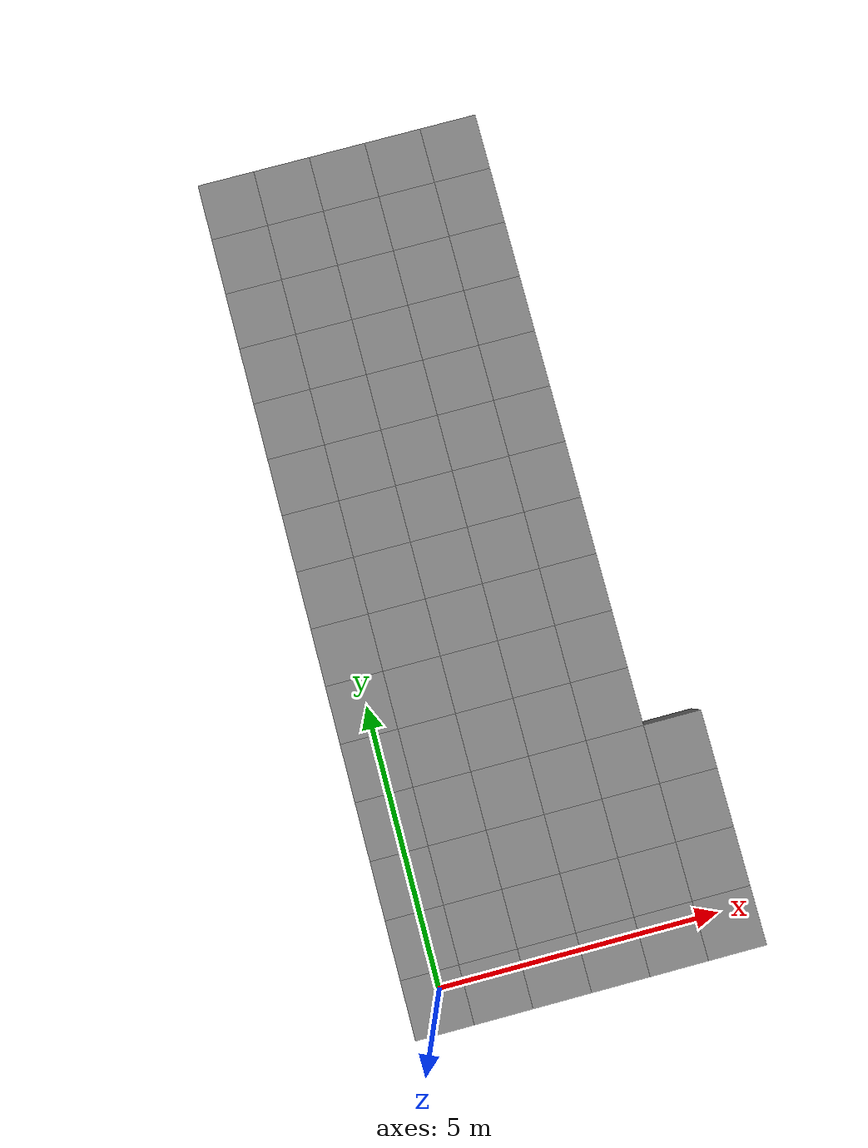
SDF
<sdf version="1.6">
 <world name="default">
  <model name="block_|0-0|">
   <static>true</static>
   <link name="link">
    <pose>0 0 0.5 0 0 0</pose>
    <collision name="collision"><geometry><box><size>1 1 1</size></box></geometry></collision>
    <visual name="visual">
     <geometry><box><size>1 1 1</size></box></geometry>
     <material><ambient>0.5 0.5 0.5 1</ambient></material>
    </visual>
   </link>
  </model>
  <model name="block_|0-1|">
   <static>true</static>
   <link name="link">
    <pose>0 1 0.5 0 0 0</pose>
    <collision name="collision"><geometry><box><size>1 1 1</size></box></geometry></collision>
    <visual name="visual">
     <geometry><box><size>1 1 1</size></box></geometry>
     <material><ambient>0.5 0.5 0.5 1</ambient></material>
    </visual>
   </link>
  </model>
  <model name="block_|0-2|">
   <static>true</static>
   <link name="link">
    <pose>0 2 0.5 0 0 0</pose>
    <collision name="collision"><geometry><box><size>1 1 1</size></box></geometry></collision>
    <visual name="visual">
     <geometry><box><size>1 1 1</size></box></geometry>
     <material><ambient>0.5 0.5 0.5 1</ambient></material>
    </visual>
   </link>
  </model>
  <model name="block_|0-3|">
   <static>true</static>
   <link name="link">
    <pose>0 3 0.5 0 0 0</pose>
    <collision name="collision"><geometry><box><size>1 1 1</size></box></geometry></collision>
    <visual name="visual">
     <geometry><box><size>1 1 1</size></box></geometry>
     <material><ambient>0.5 0.5 0.5 1</ambient></material>
    </visual>
   </link>
  </model>
  <model name="block_|0-4|">
   <static>true</static>
   <link name="link">
    <pose>0 4 0.5 0 0 0</pose>
    <collision name="collision"><geometry><box><size>1 1 1</size></box></geometry></collision>
    <visual name="visual">
     <geometry><box><size>1 1 1</size></box></geometry>
     <material><ambient>0.5 0.5 0.5 1</ambient></material>
    </visual>
   </link>
  </model>
  <model name="block_|0-5|">
   <static>true</static>
   <link name="link">
    <pose>0 5 0.5 0 0 0</pose>
    <collision name="collision"><geometry><box><size>1 1 1</size></box></geometry></collision>
    <visual name="visual">
     <geometry><box><size>1 1 1</size></box></geometry>
     <material><ambient>0.5 0.5 0.5 1</ambient></material>
    </visual>
   </link>
  </model>
  <model name="block_|0-6|">
   <static>true</static>
   <link name="link">
    <pose>0 6 0.5 0 0 0</pose>
    <collision name="collision"><geometry><box><size>1 1 1</size></box></geometry></collision>
    <visual name="visual">
     <geometry><box><size>1 1 1</size></box></geometry>
     <material><ambient>0.5 0.5 0.5 1</ambient></material>
    </visual>
   </link>
  </model>
  <model name="block_|0-7|">
   <static>true</static>
   <link name="link">
    <pose>0 7 0.5 0 0 0</pose>
    <collision name="collision"><geometry><box><size>1 1 1</size></box></geometry></collision>
    <visual name="visual">
     <geometry><box><size>1 1 1</size></box></geometry>
     <material><ambient>0.5 0.5 0.5 1</ambient></material>
    </visual>
   </link>
  </model>
  <model name="block_|0-8|">
   <static>true</static>
   <link name="link">
    <pose>0 8 0.5 0 0 0</pose>
    <collision name="collision"><geometry><box><size>1 1 1</size></box></geometry></collision>
    <visual name="visual">
     <geometry><box><size>1 1 1</size></box></geometry>
     <material><ambient>0.5 0.5 0.5 1</ambient></material>
    </visual>
   </link>
  </model>
  <model name="block_|0-9|">
   <static>true</static>
   <link name="link">
    <pose>0 9 0.5 0 0 0</pose>
    <collision name="collision"><geometry><box><size>1 1 1</size></box></geometry></collision>
    <visual name="visual">
     <geometry><box><size>1 1 1</size></box></geometry>
     <material><ambient>0.5 0.5 0.5 1</ambient></material>
    </visual>
   </link>
  </model>
  <model name="block_|0-10|">
   <static>true</static>
   <link name="link">
    <pose>0 10 0.5 0 0 0</pose>
    <collision name="collision"><geometry><box><size>1 1 1</size></box></geometry></collision>
    <visual name="visual">
     <geometry><box><size>1 1 1</size></box></geometry>
     <material><ambient>0.5 0.5 0.5 1</ambient></material>
    </visual>
   </link>
  </model>
  <model name="block_|0-11|">
   <static>true</static>
   <link name="link">
    <pose>0 11 0.5 0 0 0</pose>
    <collision name="collision"><geometry><box><size>1 1 1</size></box></geometry></collision>
    <visual name="visual">
     <geometry><box><size>1 1 1</size></box></geometry>
     <material><ambient>0.5 0.5 0.5 1</ambient></material>
    </visual>
   </link>
  </model>
  <model name="block_|0-12|">
   <static>true</static>
   <link name="link">
    <pose>0 12 0.5 0 0 0</pose>
    <collision name="collision"><geometry><box><size>1 1 1</size></box></geometry></collision>
    <visual name="visual">
     <geometry><box><size>1 1 1</size></box></geometry>
     <material><ambient>0.5 0.5 0.5 1</ambient></material>
    </visual>
   </link>
  </model>
  <model name="block_|0-13|">
   <static>true</static>
   <link name="link">
    <pose>0 13 0.5 0 0 0</pose>
    <collision name="collision"><geometry><box><size>1 1 1</size></box></geometry></collision>
    <visual name="visual">
     <geometry><box><size>1 1 1</size></box></geometry>
     <material><ambient>0.5 0.5 0.5 1</ambient></material>
    </visual>
   </link>
  </model>
  <model name="block_|0-14|">
   <static>true</static>
   <link name="link">
    <pose>0 14 0.5 0 0 0</pose>
    <collision name="collision"><geometry><box><size>1 1 1</size></box></geometry></collision>
    <visual name="visual">
     <geometry><box><size>1 1 1</size></box></geometry>
     <material><ambient>0.5 0.5 0.5 1</ambient></material>
    </visual>
   </link>
  </model>
  <model name="block_|1-0|">
   <static>true</static>
   <link name="link">
    <pose>1 0 0.5 0 0 0</pose>
    <collision name="collision"><geometry><box><size>1 1 1</size></box></geometry></collision>
    <visual name="visual">
     <geometry><box><size>1 1 1</size></box></geometry>
     <material><ambient>0.5 0.5 0.5 1</ambient></material>
    </visual>
   </link>
  </model>
  <model name="block_|1-1|">
   <static>true</static>
   <link name="link">
    <pose>1 1 0.5 0 0 0</pose>
    <collision name="collision"><geometry><box><size>1 1 1</size></box></geometry></collision>
    <visual name="visual">
     <geometry><box><size>1 1 1</size></box></geometry>
     <material><ambient>0.5 0.5 0.5 1</ambient></material>
    </visual>
   </link>
  </model>
  <model name="block_|1-2|">
   <static>true</static>
   <link name="link">
    <pose>1 2 0.5 0 0 0</pose>
    <collision name="collision"><geometry><box><size>1 1 1</size></box></geometry></collision>
    <visual name="visual">
     <geometry><box><size>1 1 1</size></box></geometry>
     <material><ambient>0.5 0.5 0.5 1</ambient></material>
    </visual>
   </link>
  </model>
  <model name="block_|1-3|">
   <static>true</static>
   <link name="link">
    <pose>1 3 0.5 0 0 0</pose>
    <collision name="collision"><geometry><box><size>1 1 1</size></box></geometry></collision>
    <visual name="visual">
     <geometry><box><size>1 1 1</size></box></geometry>
     <material><ambient>0.5 0.5 0.5 1</ambient></material>
    </visual>
   </link>
  </model>
  <model name="block_|1-4|">
   <static>true</static>
   <link name="link">
    <pose>1 4 0.5 0 0 0</pose>
    <collision name="collision"><geometry><box><size>1 1 1</size></box></geometry></collision>
    <visual name="visual">
     <geometry><box><size>1 1 1</size></box></geometry>
     <material><ambient>0.5 0.5 0.5 1</ambient></material>
    </visual>
   </link>
  </model>
  <model name="block_|1-5|">
   <static>true</static>
   <link name="link">
    <pose>1 5 0.5 0 0 0</pose>
    <collision name="collision"><geometry><box><size>1 1 1</size></box></geometry></collision>
    <visual name="visual">
     <geometry><box><size>1 1 1</size></box></geometry>
     <material><ambient>0.5 0.5 0.5 1</ambient></material>
    </visual>
   </link>
  </model>
  <model name="block_|1-6|">
   <static>true</static>
   <link name="link">
    <pose>1 6 0.5 0 0 0</pose>
    <collision name="collision"><geometry><box><size>1 1 1</size></box></geometry></collision>
    <visual name="visual">
     <geometry><box><size>1 1 1</size></box></geometry>
     <material><ambient>0.5 0.5 0.5 1</ambient></material>
    </visual>
   </link>
  </model>
  <model name="block_|1-7|">
   <static>true</static>
   <link name="link">
    <pose>1 7 0.5 0 0 0</pose>
    <collision name="collision"><geometry><box><size>1 1 1</size></box></geometry></collision>
    <visual name="visual">
     <geometry><box><size>1 1 1</size></box></geometry>
     <material><ambient>0.5 0.5 0.5 1</ambient></material>
    </visual>
   </link>
  </model>
  <model name="block_|1-8|">
   <static>true</static>
   <link name="link">
    <pose>1 8 0.5 0 0 0</pose>
    <collision name="collision"><geometry><box><size>1 1 1</size></box></geometry></collision>
    <visual name="visual">
     <geometry><box><size>1 1 1</size></box></geometry>
     <material><ambient>0.5 0.5 0.5 1</ambient></material>
    </visual>
   </link>
  </model>
  <model name="block_|1-9|">
   <static>true</static>
   <link name="link">
    <pose>1 9 0.5 0 0 0</pose>
    <collision name="collision"><geometry><box><size>1 1 1</size></box></geometry></collision>
    <visual name="visual">
     <geometry><box><size>1 1 1</size></box></geometry>
     <material><ambient>0.5 0.5 0.5 1</ambient></material>
    </visual>
   </link>
  </model>
  <model name="block_|1-10|">
   <static>true</static>
   <link name="link">
    <pose>1 10 0.5 0 0 0</pose>
    <collision name="collision"><geometry><box><size>1 1 1</size></box></geometry></collision>
    <visual name="visual">
     <geometry><box><size>1 1 1</size></box></geometry>
     <material><ambient>0.5 0.5 0.5 1</ambient></material>
    </visual>
   </link>
  </model>
  <model name="block_|1-11|">
   <static>true</static>
   <link name="link">
    <pose>1 11 0.5 0 0 0</pose>
    <collision name="collision"><geometry><box><size>1 1 1</size></box></geometry></collision>
    <visual name="visual">
     <geometry><box><size>1 1 1</size></box></geometry>
     <material><ambient>0.5 0.5 0.5 1</ambient></material>
    </visual>
   </link>
  </model>
  <model name="block_|1-12|">
   <static>true</static>
   <link name="link">
    <pose>1 12 0.5 0 0 0</pose>
    <collision name="collision"><geometry><box><size>1 1 1</size></box></geometry></collision>
    <visual name="visual">
     <geometry><box><size>1 1 1</size></box></geometry>
     <material><ambient>0.5 0.5 0.5 1</ambient></material>
    </visual>
   </link>
  </model>
  <model name="block_|1-13|">
   <static>true</static>
   <link name="link">
    <pose>1 13 0.5 0 0 0</pose>
    <collision name="collision"><geometry><box><size>1 1 1</size></box></geometry></collision>
    <visual name="visual">
     <geometry><box><size>1 1 1</size></box></geometry>
     <material><ambient>0.5 0.5 0.5 1</ambient></material>
    </visual>
   </link>
  </model>
  <model name="block_|1-14|">
   <static>true</static>
   <link name="link">
    <pose>1 14 0.5 0 0 0</pose>
    <collision name="collision"><geometry><box><size>1 1 1</size></box></geometry></collision>
    <visual name="visual">
     <geometry><box><size>1 1 1</size></box></geometry>
     <material><ambient>0.5 0.5 0.5 1</ambient></material>
    </visual>
   </link>
  </model>
  <model name="block_|2-0|">
   <static>true</static>
   <link name="link">
    <pose>2 0 0.5 0 0 0</pose>
    <collision name="collision"><geometry><box><size>1 1 1</size></box></geometry></collision>
    <visual name="visual">
     <geometry><box><size>1 1 1</size></box></geometry>
     <material><ambient>0.5 0.5 0.5 1</ambient></material>
    </visual>
   </link>
  </model>
  <model name="block_|2-1|">
   <static>true</static>
   <link name="link">
    <pose>2 1 0.5 0 0 0</pose>
    <collision name="collision"><geometry><box><size>1 1 1</size></box></geometry></collision>
    <visual name="visual">
     <geometry><box><size>1 1 1</size></box></geometry>
     <material><ambient>0.5 0.5 0.5 1</ambient></material>
    </visual>
   </link>
  </model>
  <model name="block_|2-2|">
   <static>true</static>
   <link name="link">
    <pose>2 2 0.5 0 0 0</pose>
    <collision name="collision"><geometry><box><size>1 1 1</size></box></geometry></collision>
    <visual name="visual">
     <geometry><box><size>1 1 1</size></box></geometry>
     <material><ambient>0.5 0.5 0.5 1</ambient></material>
    </visual>
   </link>
  </model>
  <model name="block_|2-3|">
   <static>true</static>
   <link name="link">
    <pose>2 3 0.5 0 0 0</pose>
    <collision name="collision"><geometry><box><size>1 1 1</size></box></geometry></collision>
    <visual name="visual">
     <geometry><box><size>1 1 1</size></box></geometry>
     <material><ambient>0.5 0.5 0.5 1</ambient></material>
    </visual>
   </link>
  </model>
  <model name="block_|2-4|">
   <static>true</static>
   <link name="link">
    <pose>2 4 0.5 0 0 0</pose>
    <collision name="collision"><geometry><box><size>1 1 1</size></box></geometry></collision>
    <visual name="visual">
     <geometry><box><size>1 1 1</size></box></geometry>
     <material><ambient>0.5 0.5 0.5 1</ambient></material>
    </visual>
   </link>
  </model>
  <model name="block_|2-5|">
   <static>true</static>
   <link name="link">
    <pose>2 5 0.5 0 0 0</pose>
    <collision name="collision"><geometry><box><size>1 1 1</size></box></geometry></collision>
    <visual name="visual">
     <geometry><box><size>1 1 1</size></box></geometry>
     <material><ambient>0.5 0.5 0.5 1</ambient></material>
    </visual>
   </link>
  </model>
  <model name="block_|2-6|">
   <static>true</static>
   <link name="link">
    <pose>2 6 0.5 0 0 0</pose>
    <collision name="collision"><geometry><box><size>1 1 1</size></box></geometry></collision>
    <visual name="visual">
     <geometry><box><size>1 1 1</size></box></geometry>
     <material><ambient>0.5 0.5 0.5 1</ambient></material>
    </visual>
   </link>
  </model>
  <model name="block_|2-7|">
   <static>true</static>
   <link name="link">
    <pose>2 7 0.5 0 0 0</pose>
    <collision name="collision"><geometry><box><size>1 1 1</size></box></geometry></collision>
    <visual name="visual">
     <geometry><box><size>1 1 1</size></box></geometry>
     <material><ambient>0.5 0.5 0.5 1</ambient></material>
    </visual>
   </link>
  </model>
  <model name="block_|2-8|">
   <static>true</static>
   <link name="link">
    <pose>2 8 0.5 0 0 0</pose>
    <collision name="collision"><geometry><box><size>1 1 1</size></box></geometry></collision>
    <visual name="visual">
     <geometry><box><size>1 1 1</size></box></geometry>
     <material><ambient>0.5 0.5 0.5 1</ambient></material>
    </visual>
   </link>
  </model>
  <model name="block_|2-9|">
   <static>true</static>
   <link name="link">
    <pose>2 9 0.5 0 0 0</pose>
    <collision name="collision"><geometry><box><size>1 1 1</size></box></geometry></collision>
    <visual name="visual">
     <geometry><box><size>1 1 1</size></box></geometry>
     <material><ambient>0.5 0.5 0.5 1</ambient></material>
    </visual>
   </link>
  </model>
  <model name="block_|2-10|">
   <static>true</static>
   <link name="link">
    <pose>2 10 0.5 0 0 0</pose>
    <collision name="collision"><geometry><box><size>1 1 1</size></box></geometry></collision>
    <visual name="visual">
     <geometry><box><size>1 1 1</size></box></geometry>
     <material><ambient>0.5 0.5 0.5 1</ambient></material>
    </visual>
   </link>
  </model>
  <model name="block_|2-11|">
   <static>true</static>
   <link name="link">
    <pose>2 11 0.5 0 0 0</pose>
    <collision name="collision"><geometry><box><size>1 1 1</size></box></geometry></collision>
    <visual name="visual">
     <geometry><box><size>1 1 1</size></box></geometry>
     <material><ambient>0.5 0.5 0.5 1</ambient></material>
    </visual>
   </link>
  </model>
  <model name="block_|2-12|">
   <static>true</static>
   <link name="link">
    <pose>2 12 0.5 0 0 0</pose>
    <collision name="collision"><geometry><box><size>1 1 1</size></box></geometry></collision>
    <visual name="visual">
     <geometry><box><size>1 1 1</size></box></geometry>
     <material><ambient>0.5 0.5 0.5 1</ambient></material>
    </visual>
   </link>
  </model>
  <model name="block_|2-13|">
   <static>true</static>
   <link name="link">
    <pose>2 13 0.5 0 0 0</pose>
    <collision name="collision"><geometry><box><size>1 1 1</size></box></geometry></collision>
    <visual name="visual">
     <geometry><box><size>1 1 1</size></box></geometry>
     <material><ambient>0.5 0.5 0.5 1</ambient></material>
    </visual>
   </link>
  </model>
  <model name="block_|2-14|">
   <static>true</static>
   <link name="link">
    <pose>2 14 0.5 0 0 0</pose>
    <collision name="collision"><geometry><box><size>1 1 1</size></box></geometry></collision>
    <visual name="visual">
     <geometry><box><size>1 1 1</size></box></geometry>
     <material><ambient>0.5 0.5 0.5 1</ambient></material>
    </visual>
   </link>
  </model>
  <model name="block_|3-0|">
   <static>true</static>
   <link name="link">
    <pose>3 0 0.5 0 0 0</pose>
    <collision name="collision"><geometry><box><size>1 1 1</size></box></geometry></collision>
    <visual name="visual">
     <geometry><box><size>1 1 1</size></box></geometry>
     <material><ambient>0.5 0.5 0.5 1</ambient></material>
    </visual>
   </link>
  </model>
  <model name="block_|3-1|">
   <static>true</static>
   <link name="link">
    <pose>3 1 0.5 0 0 0</pose>
    <collision name="collision"><geometry><box><size>1 1 1</size></box></geometry></collision>
    <visual name="visual">
     <geometry><box><size>1 1 1</size></box></geometry>
     <material><ambient>0.5 0.5 0.5 1</ambient></material>
    </visual>
   </link>
  </model>
  <model name="block_|3-2|">
   <static>true</static>
   <link name="link">
    <pose>3 2 0.5 0 0 0</pose>
    <collision name="collision"><geometry><box><size>1 1 1</size></box></geometry></collision>
    <visual name="visual">
     <geometry><box><size>1 1 1</size></box></geometry>
     <material><ambient>0.5 0.5 0.5 1</ambient></material>
    </visual>
   </link>
  </model>
  <model name="block_|3-3|">
   <static>true</static>
   <link name="link">
    <pose>3 3 0.5 0 0 0</pose>
    <collision name="collision"><geometry><box><size>1 1 1</size></box></geometry></collision>
    <visual name="visual">
     <geometry><box><size>1 1 1</size></box></geometry>
     <material><ambient>0.5 0.5 0.5 1</ambient></material>
    </visual>
   </link>
  </model>
  <model name="block_|3-4|">
   <static>true</static>
   <link name="link">
    <pose>3 4 0.5 0 0 0</pose>
    <collision name="collision"><geometry><box><size>1 1 1</size></box></geometry></collision>
    <visual name="visual">
     <geometry><box><size>1 1 1</size></box></geometry>
     <material><ambient>0.5 0.5 0.5 1</ambient></material>
    </visual>
   </link>
  </model>
  <model name="block_|3-5|">
   <static>true</static>
   <link name="link">
    <pose>3 5 0.5 0 0 0</pose>
    <collision name="collision"><geometry><box><size>1 1 1</size></box></geometry></collision>
    <visual name="visual">
     <geometry><box><size>1 1 1</size></box></geometry>
     <material><ambient>0.5 0.5 0.5 1</ambient></material>
    </visual>
   </link>
  </model>
  <model name="block_|3-6|">
   <static>true</static>
   <link name="link">
    <pose>3 6 0.5 0 0 0</pose>
    <collision name="collision"><geometry><box><size>1 1 1</size></box></geometry></collision>
    <visual name="visual">
     <geometry><box><size>1 1 1</size></box></geometry>
     <material><ambient>0.5 0.5 0.5 1</ambient></material>
    </visual>
   </link>
  </model>
  <model name="block_|3-7|">
   <static>true</static>
   <link name="link">
    <pose>3 7 0.5 0 0 0</pose>
    <collision name="collision"><geometry><box><size>1 1 1</size></box></geometry></collision>
    <visual name="visual">
     <geometry><box><size>1 1 1</size></box></geometry>
     <material><ambient>0.5 0.5 0.5 1</ambient></material>
    </visual>
   </link>
  </model>
  <model name="block_|3-8|">
   <static>true</static>
   <link name="link">
    <pose>3 8 0.5 0 0 0</pose>
    <collision name="collision"><geometry><box><size>1 1 1</size></box></geometry></collision>
    <visual name="visual">
     <geometry><box><size>1 1 1</size></box></geometry>
     <material><ambient>0.5 0.5 0.5 1</ambient></material>
    </visual>
   </link>
  </model>
  <model name="block_|3-9|">
   <static>true</static>
   <link name="link">
    <pose>3 9 0.5 0 0 0</pose>
    <collision name="collision"><geometry><box><size>1 1 1</size></box></geometry></collision>
    <visual name="visual">
     <geometry><box><size>1 1 1</size></box></geometry>
     <material><ambient>0.5 0.5 0.5 1</ambient></material>
    </visual>
   </link>
  </model>
  <model name="block_|3-10|">
   <static>true</static>
   <link name="link">
    <pose>3 10 0.5 0 0 0</pose>
    <collision name="collision"><geometry><box><size>1 1 1</size></box></geometry></collision>
    <visual name="visual">
     <geometry><box><size>1 1 1</size></box></geometry>
     <material><ambient>0.5 0.5 0.5 1</ambient></material>
    </visual>
   </link>
  </model>
  <model name="block_|3-11|">
   <static>true</static>
   <link name="link">
    <pose>3 11 0.5 0 0 0</pose>
    <collision name="collision"><geometry><box><size>1 1 1</size></box></geometry></collision>
    <visual name="visual">
     <geometry><box><size>1 1 1</size></box></geometry>
     <material><ambient>0.5 0.5 0.5 1</ambient></material>
    </visual>
   </link>
  </model>
  <model name="block_|3-12|">
   <static>true</static>
   <link name="link">
    <pose>3 12 0.5 0 0 0</pose>
    <collision name="collision"><geometry><box><size>1 1 1</size></box></geometry></collision>
    <visual name="visual">
     <geometry><box><size>1 1 1</size></box></geometry>
     <material><ambient>0.5 0.5 0.5 1</ambient></material>
    </visual>
   </link>
  </model>
  <model name="block_|3-13|">
   <static>true</static>
   <link name="link">
    <pose>3 13 0.5 0 0 0</pose>
    <collision name="collision"><geometry><box><size>1 1 1</size></box></geometry></collision>
    <visual name="visual">
     <geometry><box><size>1 1 1</size></box></geometry>
     <material><ambient>0.5 0.5 0.5 1</ambient></material>
    </visual>
   </link>
  </model>
  <model name="block_|3-14|">
   <static>true</static>
   <link name="link">
    <pose>3 14 0.5 0 0 0</pose>
    <collision name="collision"><geometry><box><size>1 1 1</size></box></geometry></collision>
    <visual name="visual">
     <geometry><box><size>1 1 1</size></box></geometry>
     <material><ambient>0.5 0.5 0.5 1</ambient></material>
    </visual>
   </link>
  </model>
  <model name="block_|4-0|">
   <static>true</static>
   <link name="link">
    <pose>4 0 0.5 0 0 0</pose>
    <collision name="collision"><geometry><box><size>1 1 1</size></box></geometry></collision>
    <visual name="visual">
     <geometry><box><size>1 1 1</size></box></geometry>
     <material><ambient>0.5 0.5 0.5 1</ambient></material>
    </visual>
   </link>
  </model>
  <model name="block_|4-1|">
   <static>true</static>
   <link name="link">
    <pose>4 1 0.5 0 0 0</pose>
    <collision name="collision"><geometry><box><size>1 1 1</size></box></geometry></collision>
    <visual name="visual">
     <geometry><box><size>1 1 1</size></box></geometry>
     <material><ambient>0.5 0.5 0.5 1</ambient></material>
    </visual>
   </link>
  </model>
  <model name="block_|4-2|">
   <static>true</static>
   <link name="link">
    <pose>4 2 0.5 0 0 0</pose>
    <collision name="collision"><geometry><box><size>1 1 1</size></box></geometry></collision>
    <visual name="visual">
     <geometry><box><size>1 1 1</size></box></geometry>
     <material><ambient>0.5 0.5 0.5 1</ambient></material>
    </visual>
   </link>
  </model>
  <model name="block_|4-3|">
   <static>true</static>
   <link name="link">
    <pose>4 3 0.5 0 0 0</pose>
    <collision name="collision"><geometry><box><size>1 1 1</size></box></geometry></collision>
    <visual name="visual">
     <geometry><box><size>1 1 1</size></box></geometry>
     <material><ambient>0.5 0.5 0.5 1</ambient></material>
    </visual>
   </link>
  </model>
  <model name="block_|4-4|">
   <static>true</static>
   <link name="link">
    <pose>4 4 0.5 0 0 0</pose>
    <collision name="collision"><geometry><box><size>1 1 1</size></box></geometry></collision>
    <visual name="visual">
     <geometry><box><size>1 1 1</size></box></geometry>
     <material><ambient>0.5 0.5 0.5 1</ambient></material>
    </visual>
   </link>
  </model>
  <model name="block_|4-5|">
   <static>true</static>
   <link name="link">
    <pose>4 5 0.5 0 0 0</pose>
    <collision name="collision"><geometry><box><size>1 1 1</size></box></geometry></collision>
    <visual name="visual">
     <geometry><box><size>1 1 1</size></box></geometry>
     <material><ambient>0.5 0.5 0.5 1</ambient></material>
    </visual>
   </link>
  </model>
  <model name="block_|4-6|">
   <static>true</static>
   <link name="link">
    <pose>4 6 0.5 0 0 0</pose>
    <collision name="collision"><geometry><box><size>1 1 1</size></box></geometry></collision>
    <visual name="visual">
     <geometry><box><size>1 1 1</size></box></geometry>
     <material><ambient>0.5 0.5 0.5 1</ambient></material>
    </visual>
   </link>
  </model>
  <model name="block_|4-7|">
   <static>true</static>
   <link name="link">
    <pose>4 7 0.5 0 0 0</pose>
    <collision name="collision"><geometry><box><size>1 1 1</size></box></geometry></collision>
    <visual name="visual">
     <geometry><box><size>1 1 1</size></box></geometry>
     <material><ambient>0.5 0.5 0.5 1</ambient></material>
    </visual>
   </link>
  </model>
  <model name="block_|4-8|">
   <static>true</static>
   <link name="link">
    <pose>4 8 0.5 0 0 0</pose>
    <collision name="collision"><geometry><box><size>1 1 1</size></box></geometry></collision>
    <visual name="visual">
     <geometry><box><size>1 1 1</size></box></geometry>
     <material><ambient>0.5 0.5 0.5 1</ambient></material>
    </visual>
   </link>
  </model>
  <model name="block_|4-9|">
   <static>true</static>
   <link name="link">
    <pose>4 9 0.5 0 0 0</pose>
    <collision name="collision"><geometry><box><size>1 1 1</size></box></geometry></collision>
    <visual name="visual">
     <geometry><box><size>1 1 1</size></box></geometry>
     <material><ambient>0.5 0.5 0.5 1</ambient></material>
    </visual>
   </link>
  </model>
  <model name="block_|4-10|">
   <static>true</static>
   <link name="link">
    <pose>4 10 0.5 0 0 0</pose>
    <collision name="collision"><geometry><box><size>1 1 1</size></box></geometry></collision>
    <visual name="visual">
     <geometry><box><size>1 1 1</size></box></geometry>
     <material><ambient>0.5 0.5 0.5 1</ambient></material>
    </visual>
   </link>
  </model>
  <model name="block_|4-11|">
   <static>true</static>
   <link name="link">
    <pose>4 11 0.5 0 0 0</pose>
    <collision name="collision"><geometry><box><size>1 1 1</size></box></geometry></collision>
    <visual name="visual">
     <geometry><box><size>1 1 1</size></box></geometry>
     <material><ambient>0.5 0.5 0.5 1</ambient></material>
    </visual>
   </link>
  </model>
  <model name="block_|4-12|">
   <static>true</static>
   <link name="link">
    <pose>4 12 0.5 0 0 0</pose>
    <collision name="collision"><geometry><box><size>1 1 1</size></box></geometry></collision>
    <visual name="visual">
     <geometry><box><size>1 1 1</size></box></geometry>
     <material><ambient>0.5 0.5 0.5 1</ambient></material>
    </visual>
   </link>
  </model>
  <model name="block_|4-13|">
   <static>true</static>
   <link name="link">
    <pose>4 13 0.5 0 0 0</pose>
    <collision name="collision"><geometry><box><size>1 1 1</size></box></geometry></collision>
    <visual name="visual">
     <geometry><box><size>1 1 1</size></box></geometry>
     <material><ambient>0.5 0.5 0.5 1</ambient></material>
    </visual>
   </link>
  </model>
  <model name="block_|4-14|">
   <static>true</static>
   <link name="link">
    <pose>4 14 0.5 0 0 0</pose>
    <collision name="collision"><geometry><box><size>1 1 1</size></box></geometry></collision>
    <visual name="visual">
     <geometry><box><size>1 1 1</size></box></geometry>
     <material><ambient>0.5 0.5 0.5 1</ambient></material>
    </visual>
   </link>
  </model>
  <model name="block_|5-0|">
   <static>true</static>
   <link name="link">
    <pose>5 0 0.5 0 0 0</pose>
    <collision name="collision"><geometry><box><size>1 1 1</size></box></geometry></collision>
    <visual name="visual">
     <geometry><box><size>1 1 1</size></box></geometry>
     <material><ambient>0.5 0.5 0.5 1</ambient></material>
    </visual>
   </link>
  </model>
  <model name="block_|5-1|">
   <static>true</static>
   <link name="link">
    <pose>5 1 0.5 0 0 0</pose>
    <collision name="collision"><geometry><box><size>1 1 1</size></box></geometry></collision>
    <visual name="visual">
     <geometry><box><size>1 1 1</size></box></geometry>
     <material><ambient>0.5 0.5 0.5 1</ambient></material>
    </visual>
   </link>
  </model>
  <model name="block_|5-2|">
   <static>true</static>
   <link name="link">
    <pose>5 2 0.5 0 0 0</pose>
    <collision name="collision"><geometry><box><size>1 1 1</size></box></geometry></collision>
    <visual name="visual">
     <geometry><box><size>1 1 1</size></box></geometry>
     <material><ambient>0.5 0.5 0.5 1</ambient></material>
    </visual>
   </link>
  </model>
  <model name="block_|5-3|">
   <static>true</static>
   <link name="link">
    <pose>5 3 0.5 0 0 0</pose>
    <collision name="collision"><geometry><box><size>1 1 1</size></box></geometry></collision>
    <visual name="visual">
     <geometry><box><size>1 1 1</size></box></geometry>
     <material><ambient>0.5 0.5 0.5 1</ambient></material>
    </visual>
   </link>
  </model>
 </world>
</sdf>
